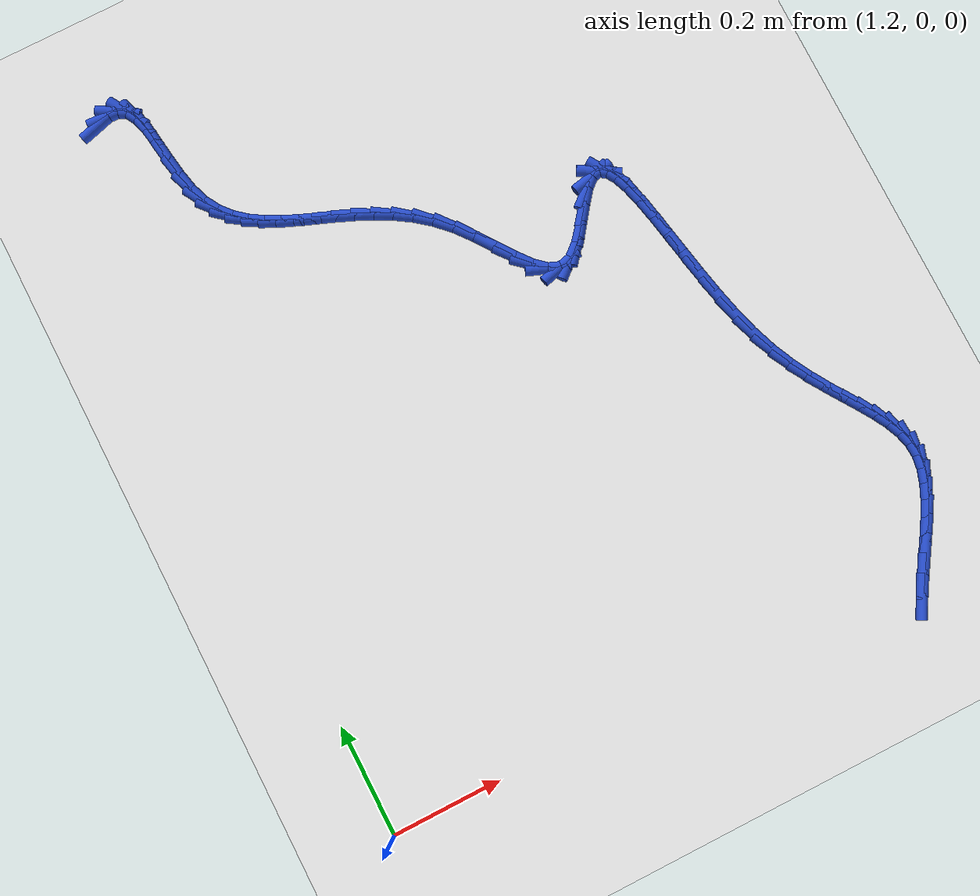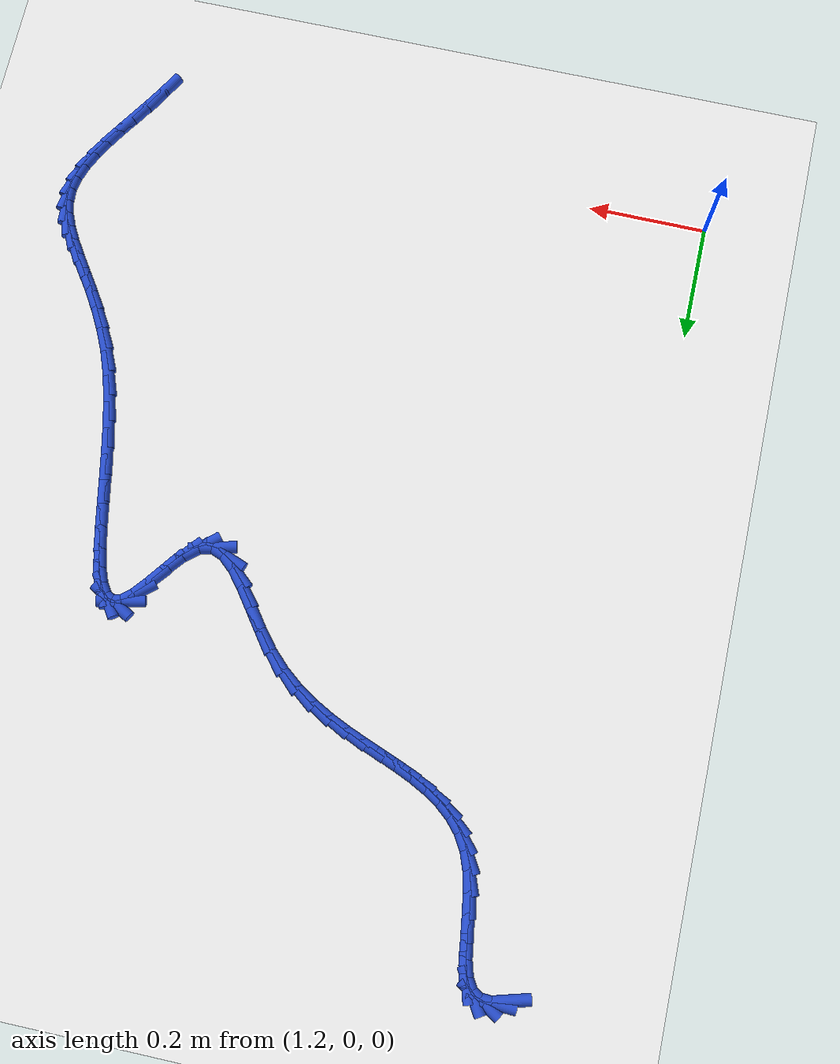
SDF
<sdf version="1.6">
 <world name="default">
  <model name="ground_plane">
   <static>1</static>
   <link name="link">
    <collision name="collision">
     <geometry><plane><normal>0 0 1</normal><size>100 100</size></plane></geometry>
     <surface><friction><ode><mu>100</mu><mu2>50</mu2></ode></friction></surface>
    </collision>
    <visual name="visual">
     <cast_shadows>0</cast_shadows>
     <geometry><plane><normal>0 0 1</normal><size>100 100</size></plane></geometry>
     <material>
      <script><uri>file://media/materials/scripts/gazebo.material</uri><name>Gazebo/WhiteGlow</name></script>
     </material>
    </visual>
   </link>
  </model>
  <model name="line">
   <link name="link_65">
    <pose>1.2853505555541223 1.3303477635416179 0.01 0 1.57 0.27853139766702234</pose>
    <collision name="collision">
     <geometry><cylinder><radius>0.01</radius><length>0.08</length></cylinder></geometry>
    </collision>
    <visual name="visual">
     <material>
      <script><name>Gazebo/Blue</name><uri>file://media/materials/scripts/gazebo.material</uri></script>
     </material>
     <geometry><cylinder><radius>0.01</radius><length>0.08</length></cylinder></geometry>
    </visual>
   </link>
   <link name="link_66">
    <pose>1.3061527996052291 1.3362964763967307 0.01 0 1.57 -0.05322189723997047</pose>
    <collision name="collision">
     <geometry><cylinder><radius>0.01</radius><length>0.08</length></cylinder></geometry>
    </collision>
    <visual name="visual">
     <material>
      <script><name>Gazebo/Blue</name><uri>file://media/materials/scripts/gazebo.material</uri></script>
     </material>
     <geometry><cylinder><radius>0.01</radius><length>0.08</length></cylinder></geometry>
    </visual>
   </link>
   <link name="link_67">
    <pose>1.3238896872884598 1.3353515932652669 0.01 0 1.57 -0.547477301090265</pose>
    <collision name="collision">
     <geometry><cylinder><radius>0.01</radius><length>0.08</length></cylinder></geometry>
    </collision>
    <visual name="visual">
     <material>
      <script><name>Gazebo/Blue</name><uri>file://media/materials/scripts/gazebo.material</uri></script>
     </material>
     <geometry><cylinder><radius>0.01</radius><length>0.08</length></cylinder></geometry>
    </visual>
   </link>
   <link name="link_68">
    <pose>1.3381774607695103 1.3266412009017596 0.01 0 1.57 -1.0251447185116218</pose>
    <collision name="collision">
     <geometry><cylinder><radius>0.01</radius><length>0.08</length></cylinder></geometry>
    </collision>
    <visual name="visual">
     <material>
      <script><name>Gazebo/Blue</name><uri>file://media/materials/scripts/gazebo.material</uri></script>
     </material>
     <geometry><cylinder><radius>0.01</radius><length>0.08</length></cylinder></geometry>
    </visual>
   </link>
   <link name="link_69">
    <pose>1.3486690461316018 1.3093608084153763 0.01 0 1.57 -1.2921160792339452</pose>
    <collision name="collision">
     <geometry><cylinder><radius>0.01</radius><length>0.08</length></cylinder></geometry>
    </collision>
    <visual name="visual">
     <material>
      <script><name>Gazebo/Blue</name><uri>file://media/materials/scripts/gazebo.material</uri></script>
     </material>
     <geometry><cylinder><radius>0.01</radius><length>0.08</length></cylinder></geometry>
    </visual>
   </link>
   <link name="link_70">
    <pose>1.355855136973155 1.2842456802718472 0.01 0 1.57 -1.4027228436416574</pose>
    <collision name="collision">
     <geometry><cylinder><radius>0.01</radius><length>0.08</length></cylinder></geometry>
    </collision>
    <visual name="visual">
     <material>
      <script><name>Gazebo/Blue</name><uri>file://media/materials/scripts/gazebo.material</uri></script>
     </material>
     <geometry><cylinder><radius>0.01</radius><length>0.08</length></cylinder></geometry>
    </visual>
   </link>
   <link name="link_71">
    <pose>1.361060895187166 1.2535647725675039 0.01 0 1.57 -1.4363598154307848</pose>
    <collision name="collision">
     <geometry><cylinder><radius>0.01</radius><length>0.08</length></cylinder></geometry>
    </collision>
    <visual name="visual">
     <material>
      <script><name>Gazebo/Blue</name><uri>file://media/materials/scripts/gazebo.material</uri></script>
     </material>
     <geometry><cylinder><radius>0.01</radius><length>0.08</length></cylinder></geometry>
    </visual>
   </link>
   <link name="link_72">
    <pose>1.3656475067368106 1.2196532510022042 0.01 0 1.57 -1.4188842971220965</pose>
    <collision name="collision">
     <geometry><cylinder><radius>0.01</radius><length>0.08</length></cylinder></geometry>
    </collision>
    <visual name="visual">
     <material>
      <script><name>Gazebo/Blue</name><uri>file://media/materials/scripts/gazebo.material</uri></script>
     </material>
     <geometry><cylinder><radius>0.01</radius><length>0.08</length></cylinder></geometry>
    </visual>
   </link>
   <link name="link_73">
    <pose>1.370976157585267 1.1848462812758067 0.01 0 1.57 -1.3516438923917342</pose>
    <collision name="collision">
     <geometry><cylinder><radius>0.01</radius><length>0.08</length></cylinder></geometry>
    </collision>
    <visual name="visual">
     <material>
      <script><name>Gazebo/Blue</name><uri>file://media/materials/scripts/gazebo.material</uri></script>
     </material>
     <geometry><cylinder><radius>0.01</radius><length>0.08</length></cylinder></geometry>
    </visual>
   </link>
   <link name="link_74">
    <pose>1.378408033695712 1.1514790290881702 0.01 0 1.57 -1.2197613411176336</pose>
    <collision name="collision">
     <geometry><cylinder><radius>0.01</radius><length>0.08</length></cylinder></geometry>
    </collision>
    <visual name="visual">
     <material>
      <script><name>Gazebo/Blue</name><uri>file://media/materials/scripts/gazebo.material</uri></script>
     </material>
     <geometry><cylinder><radius>0.01</radius><length>0.08</length></cylinder></geometry>
    </visual>
   </link>
   <link name="link_75">
    <pose>1.3892674923155086 1.12182473006647 0.01 0 1.57 -1.0394744714232016</pose>
    <collision name="collision">
     <geometry><cylinder><radius>0.01</radius><length>0.08</length></cylinder></geometry>
    </collision>
    <visual name="visual">
     <material>
      <script><name>Gazebo/Blue</name><uri>file://media/materials/scripts/gazebo.material</uri></script>
     </material>
     <geometry><cylinder><radius>0.01</radius><length>0.08</length></cylinder></geometry>
    </visual>
   </link>
   <link name="link_76">
    <pose>1.4040229660546213 1.0967173224355287 0.01 0 1.57 -0.8591904363915909</pose>
    <collision name="collision">
     <geometry><cylinder><radius>0.01</radius><length>0.08</length></cylinder></geometry>
    </collision>
    <visual name="visual">
     <material>
      <script><name>Gazebo/Blue</name><uri>file://media/materials/scripts/gazebo.material</uri></script>
     </material>
     <geometry><cylinder><radius>0.01</radius><length>0.08</length></cylinder></geometry>
    </visual>
   </link>
   <link name="link_77">
    <pose>1.4222820091883694 1.0755431170279126 0.01 0 1.57 -0.6986355467073119</pose>
    <collision name="collision">
     <geometry><cylinder><radius>0.01</radius><length>0.08</length></cylinder></geometry>
    </collision>
    <visual name="visual">
     <material>
      <script><name>Gazebo/Blue</name><uri>file://media/materials/scripts/gazebo.material</uri></script>
     </material>
     <geometry><cylinder><radius>0.01</radius><length>0.08</length></cylinder></geometry>
    </visual>
   </link>
   <link name="link_78">
    <pose>1.443614356526461 1.0576248285881331 0.01 0 1.57 -0.5691773472983183</pose>
    <collision name="collision">
     <geometry><cylinder><radius>0.01</radius><length>0.08</length></cylinder></geometry>
    </collision>
    <visual name="visual">
     <material>
      <script><name>Gazebo/Blue</name><uri>file://media/materials/scripts/gazebo.material</uri></script>
     </material>
     <geometry><cylinder><radius>0.01</radius><length>0.08</length></cylinder></geometry>
    </visual>
   </link>
   <link name="link_79">
    <pose>1.4675897428786069 1.0422851718607025 0.01 0 1.57 -0.4741078250498231</pose>
    <collision name="collision">
     <geometry><cylinder><radius>0.01</radius><length>0.08</length></cylinder></geometry>
    </collision>
    <visual name="visual">
     <material>
      <script><name>Gazebo/Blue</name><uri>file://media/materials/scripts/gazebo.material</uri></script>
     </material>
     <geometry><cylinder><radius>0.01</radius><length>0.08</length></cylinder></geometry>
    </visual>
   </link>
   <link name="link_80">
    <pose>1.493777903054515 1.0288468615901316 0.01 0 1.57 -0.41172249496234575</pose>
    <collision name="collision">
     <geometry><cylinder><radius>0.01</radius><length>0.08</length></cylinder></geometry>
    </collision>
    <visual name="visual">
     <material>
      <script><name>Gazebo/Blue</name><uri>file://media/materials/scripts/gazebo.material</uri></script>
     </material>
     <geometry><cylinder><radius>0.01</radius><length>0.08</length></cylinder></geometry>
    </visual>
   </link>
   <link name="link_81">
    <pose>1.5217485718638966 1.0166326125209317 0.01 0 1.57 -0.37869137597260677</pose>
    <collision name="collision">
     <geometry><cylinder><radius>0.01</radius><length>0.08</length></cylinder></geometry>
    </collision>
    <visual name="visual">
     <material>
      <script><name>Gazebo/Blue</name><uri>file://media/materials/scripts/gazebo.material</uri></script>
     </material>
     <geometry><cylinder><radius>0.01</radius><length>0.08</length></cylinder></geometry>
    </visual>
   </link>
   <link name="link_82">
    <pose>1.55107148411646 1.004965139397615 0.01 0 1.57 -0.371927104337818</pose>
    <collision name="collision">
     <geometry><cylinder><radius>0.01</radius><length>0.08</length></cylinder></geometry>
    </collision>
    <visual name="visual">
     <material>
      <script><name>Gazebo/Blue</name><uri>file://media/materials/scripts/gazebo.material</uri></script>
     </material>
     <geometry><cylinder><radius>0.01</radius><length>0.08</length></cylinder></geometry>
    </visual>
   </link>
   <link name="link_83">
    <pose>1.5813163746219152 0.9931671569646926 0.01 0 1.57 -0.38920221749239947</pose>
    <collision name="collision">
     <geometry><cylinder><radius>0.01</radius><length>0.08</length></cylinder></geometry>
    </collision>
    <visual name="visual">
     <material>
      <script><name>Gazebo/Blue</name><uri>file://media/materials/scripts/gazebo.material</uri></script>
     </material>
     <geometry><cylinder><radius>0.01</radius><length>0.08</length></cylinder></geometry>
    </visual>
   </link>
   <link name="link_84">
    <pose>1.6120529781899713 0.9805613799666761 0.01 0 1.57 -0.42909348713805645</pose>
    <collision name="collision">
     <geometry><cylinder><radius>0.01</radius><length>0.08</length></cylinder></geometry>
    </collision>
    <visual name="visual">
     <material>
      <script><name>Gazebo/Blue</name><uri>file://media/materials/scripts/gazebo.material</uri></script>
     </material>
     <geometry><cylinder><radius>0.01</radius><length>0.08</length></cylinder></geometry>
    </visual>
   </link>
   <link name="link_85">
    <pose>1.6428510296303385 0.9664705231480775 0.01 0 1.57 -0.490578771416051</pose>
    <collision name="collision">
     <geometry><cylinder><radius>0.01</radius><length>0.08</length></cylinder></geometry>
    </collision>
    <visual name="visual">
     <material>
      <script><name>Gazebo/Blue</name><uri>file://media/materials/scripts/gazebo.material</uri></script>
     </material>
     <geometry><cylinder><radius>0.01</radius><length>0.08</length></cylinder></geometry>
    </visual>
   </link>
   <link name="link_86">
    <pose>1.6732802637527262 0.9502173012534078 0.01 0 1.57 -0.5724093929902478</pose>
    <collision name="collision">
     <geometry><cylinder><radius>0.01</radius><length>0.08</length></cylinder></geometry>
    </collision>
    <visual name="visual">
     <material>
      <script><name>Gazebo/Blue</name><uri>file://media/materials/scripts/gazebo.material</uri></script>
     </material>
     <geometry><cylinder><radius>0.01</radius><length>0.08</length></cylinder></geometry>
    </visual>
   </link>
   <link name="link_87">
    <pose>1.7029104153668435 0.9311244290271787 0.01 0 1.57 -0.6723568095638092</pose>
    <collision name="collision">
     <geometry><cylinder><radius>0.01</radius><length>0.08</length></cylinder></geometry>
    </collision>
    <visual name="visual">
     <material>
      <script><name>Gazebo/Blue</name><uri>file://media/materials/scripts/gazebo.material</uri></script>
     </material>
     <geometry><cylinder><radius>0.01</radius><length>0.08</length></cylinder></geometry>
    </visual>
   </link>
   <link name="link_88">
    <pose>1.7313112192823998 0.9085146212139016 0.01 0 1.57 -0.786566550502243</pose>
    <collision name="collision">
     <geometry><cylinder><radius>0.01</radius><length>0.08</length></cylinder></geometry>
    </collision>
    <visual name="visual">
     <material>
      <script><name>Gazebo/Blue</name><uri>file://media/materials/scripts/gazebo.material</uri></script>
     </material>
     <geometry><cylinder><radius>0.01</radius><length>0.08</length></cylinder></geometry>
    </visual>
   </link>
   <link name="link_89">
    <pose>1.7580524620273805 0.8817108170981751 0.01 0 1.57 -0.8941212267509185</pose>
    <collision name="collision">
     <geometry><cylinder><radius>0.01</radius><length>0.08</length></cylinder></geometry>
    </collision>
    <visual name="visual">
     <material>
      <script><name>Gazebo/Blue</name><uri>file://media/materials/scripts/gazebo.material</uri></script>
     </material>
     <geometry><cylinder><radius>0.01</radius><length>0.08</length></cylinder></geometry>
    </visual>
   </link>
   <link name="link_90">
    <pose>1.7828797796945806 0.8507994245075241 0.01 0 1.57 -0.9497405381775882</pose>
    <collision name="collision">
     <geometry><cylinder><radius>0.01</radius><length>0.08</length></cylinder></geometry>
    </collision>
    <visual name="visual">
     <material>
      <script><name>Gazebo/Blue</name><uri>file://media/materials/scripts/gazebo.material</uri></script>
     </material>
     <geometry><cylinder><radius>0.01</radius><length>0.08</length></cylinder></geometry>
    </visual>
   </link>
   <link name="link_91">
    <pose>1.8061075186615987 0.8183359640759598 0.01 0 1.57 -0.9517945615307997</pose>
    <collision name="collision">
     <geometry><cylinder><radius>0.01</radius><length>0.08</length></cylinder></geometry>
    </collision>
    <visual name="visual">
     <material>
      <script><name>Gazebo/Blue</name><uri>file://media/materials/scripts/gazebo.material</uri></script>
     </material>
     <geometry><cylinder><radius>0.01</radius><length>0.08</length></cylinder></geometry>
    </visual>
   </link>
   <link name="link_92">
    <pose>1.8281647829750431 0.7873741883804739 0.01 0 1.57 -0.8916645440093958</pose>
    <collision name="collision">
     <geometry><cylinder><radius>0.01</radius><length>0.08</length></cylinder></geometry>
    </collision>
    <visual name="visual">
     <material>
      <script><name>Gazebo/Blue</name><uri>file://media/materials/scripts/gazebo.material</uri></script>
     </material>
     <geometry><cylinder><radius>0.01</radius><length>0.08</length></cylinder></geometry>
    </visual>
   </link>
   <link name="link_93">
    <pose>1.849480676681521 0.7609678499980601 0.01 0 1.57 -0.7300167712555314</pose>
    <collision name="collision">
     <geometry><cylinder><radius>0.01</radius><length>0.08</length></cylinder></geometry>
    </collision>
    <visual name="visual">
     <material>
      <script><name>Gazebo/Blue</name><uri>file://media/materials/scripts/gazebo.material</uri></script>
     </material>
     <geometry><cylinder><radius>0.01</radius><length>0.08</length></cylinder></geometry>
    </visual>
   </link>
   <link name="link_94">
    <pose>1.8704843038276409 0.7421707015057116 0.01 0 1.57 -0.3676254150903607</pose>
    <collision name="collision">
     <geometry><cylinder><radius>0.01</radius><length>0.08</length></cylinder></geometry>
    </collision>
    <visual name="visual">
     <material>
      <script><name>Gazebo/Blue</name><uri>file://media/materials/scripts/gazebo.material</uri></script>
     </material>
     <geometry><cylinder><radius>0.01</radius><length>0.08</length></cylinder></geometry>
    </visual>
   </link>
   <link name="link_95">
    <pose>1.8916047684600095 0.7340364954804214 0.01 0 1.57 0.2499377929977043</pose>
    <collision name="collision">
     <geometry><cylinder><radius>0.01</radius><length>0.08</length></cylinder></geometry>
    </collision>
    <visual name="visual">
     <material>
      <script><name>Gazebo/Blue</name><uri>file://media/materials/scripts/gazebo.material</uri></script>
     </material>
     <geometry><cylinder><radius>0.01</radius><length>0.08</length></cylinder></geometry>
    </visual>
   </link>
   <link name="link_96">
    <pose>1.9132641367451693 0.7395656050017312 0.01 0 1.57 0.7048059287508533</pose>
    <collision name="collision">
     <geometry><cylinder><radius>0.01</radius><length>0.08</length></cylinder></geometry>
    </collision>
    <visual name="visual">
     <material>
      <script><name>Gazebo/Blue</name><uri>file://media/materials/scripts/gazebo.material</uri></script>
     </material>
     <geometry><cylinder><radius>0.01</radius><length>0.08</length></cylinder></geometry>
    </visual>
   </link>
   <link name="link_97">
    <pose>1.9354459050268051 0.758432026950073 0.01 0 1.57 0.8807169830798313</pose>
    <collision name="collision">
     <geometry><cylinder><radius>0.01</radius><length>0.08</length></cylinder></geometry>
    </collision>
    <visual name="visual">
     <material>
      <script><name>Gazebo/Blue</name><uri>file://media/materials/scripts/gazebo.material</uri></script>
     </material>
     <geometry><cylinder><radius>0.01</radius><length>0.08</length></cylinder></geometry>
    </visual>
   </link>
   <link name="link_98">
    <pose>1.957444246269218 0.7850815168560132 0.01 0 1.57 0.9333201489348509</pose>
    <collision name="collision">
     <geometry><cylinder><radius>0.01</radius><length>0.08</length></cylinder></geometry>
    </collision>
    <visual name="visual">
     <material>
      <script><name>Gazebo/Blue</name><uri>file://media/materials/scripts/gazebo.material</uri></script>
     </material>
     <geometry><cylinder><radius>0.01</radius><length>0.08</length></cylinder></geometry>
    </visual>
   </link>
   <link name="link_99">
    <pose>1.9784929075871915 0.8135015244179072 0.01 0 1.57 0.8962988359399262</pose>
    <collision name="collision">
     <geometry><cylinder><radius>0.01</radius><length>0.08</length></cylinder></geometry>
    </collision>
    <visual name="visual">
     <material>
      <script><name>Gazebo/Blue</name><uri>file://media/materials/scripts/gazebo.material</uri></script>
     </material>
     <geometry><cylinder><radius>0.01</radius><length>0.08</length></cylinder></geometry>
    </visual>
   </link>
   <link name="link_100">
    <pose>1.9978256360955098 0.8376794993341108 0.01 0 1.57 0.701827487415335</pose>
    <collision name="collision">
     <geometry><cylinder><radius>0.01</radius><length>0.08</length></cylinder></geometry>
    </collision>
    <visual name="visual">
     <material>
      <script><name>Gazebo/Blue</name><uri>file://media/materials/scripts/gazebo.material</uri></script>
     </material>
     <geometry><cylinder><radius>0.01</radius><length>0.08</length></cylinder></geometry>
    </visual>
   </link>
   <link name="link_101">
    <pose>2.0147355533168327 0.8519754341678849 0.01 0 1.57 0.20144617636448983</pose>
    <collision name="collision">
     <geometry><cylinder><radius>0.01</radius><length>0.08</length></cylinder></geometry>
    </collision>
    <visual name="visual">
     <material>
      <script><name>Gazebo/Blue</name><uri>file://media/materials/scripts/gazebo.material</uri></script>
     </material>
     <geometry><cylinder><radius>0.01</radius><length>0.08</length></cylinder></geometry>
    </visual>
   </link>
   <link name="link_102">
    <pose>2.0291813637331413 0.8549255009403215 0.01 0 1.57 -0.5297576721503066</pose>
    <collision name="collision">
     <geometry><cylinder><radius>0.01</radius><length>0.08</length></cylinder></geometry>
    </collision>
    <visual name="visual">
     <material>
      <script><name>Gazebo/Blue</name><uri>file://media/materials/scripts/gazebo.material</uri></script>
     </material>
     <geometry><cylinder><radius>0.01</radius><length>0.08</length></cylinder></geometry>
    </visual>
   </link>
   <link name="link_103">
    <pose>2.041539760472997 0.8476885283601705 0.01 0 1.57 -0.9897485638841087</pose>
    <collision name="collision">
     <geometry><cylinder><radius>0.01</radius><length>0.08</length></cylinder></geometry>
    </collision>
    <visual name="visual">
     <material>
      <script><name>Gazebo/Blue</name><uri>file://media/materials/scripts/gazebo.material</uri></script>
     </material>
     <geometry><cylinder><radius>0.01</radius><length>0.08</length></cylinder></geometry>
    </visual>
   </link>
   <link name="link_104">
    <pose>2.052193907595626 0.8314639467882351 0.01 0 1.57 -1.2000943881005026</pose>
    <collision name="collision">
     <geometry><cylinder><radius>0.01</radius><length>0.08</length></cylinder></geometry>
    </collision>
    <visual name="visual">
     <material>
      <script><name>Gazebo/Blue</name><uri>file://media/materials/scripts/gazebo.material</uri></script>
     </material>
     <geometry><cylinder><radius>0.01</radius><length>0.08</length></cylinder></geometry>
    </visual>
   </link>
   <link name="link_105">
    <pose>2.061526969160259 0.8074511865853191 0.01 0 1.57 -1.303046179569208</pose>
    <collision name="collision">
     <geometry><cylinder><radius>0.01</radius><length>0.08</length></cylinder></geometry>
    </collision>
    <visual name="visual">
     <material>
      <script><name>Gazebo/Blue</name><uri>file://media/materials/scripts/gazebo.material</uri></script>
     </material>
     <geometry><cylinder><radius>0.01</radius><length>0.08</length></cylinder></geometry>
    </visual>
   </link>
   <link name="link_106">
    <pose>2.069922109226121 0.7768496781122257 0.01 0 1.57 -1.3563034951414612</pose>
    <collision name="collision">
     <geometry><cylinder><radius>0.01</radius><length>0.08</length></cylinder></geometry>
    </collision>
    <visual name="visual">
     <material>
      <script><name>Gazebo/Blue</name><uri>file://media/materials/scripts/gazebo.material</uri></script>
     </material>
     <geometry><cylinder><radius>0.01</radius><length>0.08</length></cylinder></geometry>
    </visual>
   </link>
   <link name="link_107">
    <pose>2.0777624918524435 0.740858851729759 0.01 0 1.57 -1.3822069205072367</pose>
    <collision name="collision">
     <geometry><cylinder><radius>0.01</radius><length>0.08</length></cylinder></geometry>
    </collision>
    <visual name="visual">
     <material>
      <script><name>Gazebo/Blue</name><uri>file://media/materials/scripts/gazebo.material</uri></script>
     </material>
     <geometry><cylinder><radius>0.01</radius><length>0.08</length></cylinder></geometry>
    </visual>
   </link>
   <link name="link_108">
    <pose>2.0854312810984523 0.700678137798722 0.01 0 1.57 -1.3902465642164477</pose>
    <collision name="collision">
     <geometry><cylinder><radius>0.01</radius><length>0.08</length></cylinder></geometry>
    </collision>
    <visual name="visual">
     <material>
      <script><name>Gazebo/Blue</name><uri>file://media/materials/scripts/gazebo.material</uri></script>
     </material>
     <geometry><cylinder><radius>0.01</radius><length>0.08</length></cylinder></geometry>
    </visual>
   </link>
   <link name="link_109">
    <pose>2.0933116410233765 0.6575069666799187 0.01 0 1.57 -1.3844885205665518</pose>
    <collision name="collision">
     <geometry><cylinder><radius>0.01</radius><length>0.08</length></cylinder></geometry>
    </collision>
    <visual name="visual">
     <material>
      <script><name>Gazebo/Blue</name><uri>file://media/materials/scripts/gazebo.material</uri></script>
     </material>
     <geometry><cylinder><radius>0.01</radius><length>0.08</length></cylinder></geometry>
    </visual>
   </link>
   <link name="link_110">
    <pose>2.1017867356864435 0.6125447687341523 0.01 0 1.57 -1.3661875090650026</pose>
    <collision name="collision">
     <geometry><cylinder><radius>0.01</radius><length>0.08</length></cylinder></geometry>
    </collision>
    <visual name="visual">
     <material>
      <script><name>Gazebo/Blue</name><uri>file://media/materials/scripts/gazebo.material</uri></script>
     </material>
     <geometry><cylinder><radius>0.01</radius><length>0.08</length></cylinder></geometry>
    </visual>
   </link>
   <link name="link_111">
    <pose>2.111239729146882 0.5669909743222263 0.01 0 1.57 -1.334682876750881</pose>
    <collision name="collision">
     <geometry><cylinder><radius>0.01</radius><length>0.08</length></cylinder></geometry>
    </collision>
    <visual name="visual">
     <material>
      <script><name>Gazebo/Blue</name><uri>file://media/materials/scripts/gazebo.material</uri></script>
     </material>
     <geometry><cylinder><radius>0.01</radius><length>0.08</length></cylinder></geometry>
    </visual>
   </link>
   <link name="link_112">
    <pose>2.1220537854639203 0.5220450138049448 0.01 0 1.57 -1.287511528044646</pose>
    <collision name="collision">
     <geometry><cylinder><radius>0.01</radius><length>0.08</length></cylinder></geometry>
    </collision>
    <visual name="visual">
     <material>
      <script><name>Gazebo/Blue</name><uri>file://media/materials/scripts/gazebo.material</uri></script>
     </material>
     <geometry><cylinder><radius>0.01</radius><length>0.08</length></cylinder></geometry>
    </visual>
   </link>
   <link name="link_113">
    <pose>2.1346120686967858 0.4789063175431115 0.01 0 1.57 -1.2202245410643164</pose>
    <collision name="collision">
     <geometry><cylinder><radius>0.01</radius><length>0.08</length></cylinder></geometry>
    </collision>
    <visual name="visual">
     <material>
      <script><name>Gazebo/Blue</name><uri>file://media/materials/scripts/gazebo.material</uri></script>
     </material>
     <geometry><cylinder><radius>0.01</radius><length>0.08</length></cylinder></geometry>
    </visual>
   </link>
   <link name="link_114">
    <pose>2.1492909566534375 0.43876459724158867 0.01 0 1.57 -1.1411070676083628</pose>
    <collision name="collision">
     <geometry><cylinder><radius>0.01</radius><length>0.08</length></cylinder></geometry>
    </collision>
    <visual name="visual">
     <material>
      <script><name>Gazebo/Blue</name><uri>file://media/materials/scripts/gazebo.material</uri></script>
     </material>
     <geometry><cylinder><radius>0.01</radius><length>0.08</length></cylinder></geometry>
    </visual>
   </link>
   <link name="link_115">
    <pose>2.166044394296391 0.40220459445017914 0.01 0 1.57 -1.0730555514200637</pose>
    <collision name="collision">
     <geometry><cylinder><radius>0.01</radius><length>0.08</length></cylinder></geometry>
    </collision>
    <visual name="visual">
     <material>
      <script><name>Gazebo/Blue</name><uri>file://media/materials/scripts/gazebo.material</uri></script>
     </material>
     <geometry><cylinder><radius>0.01</radius><length>0.08</length></cylinder></geometry>
    </visual>
   </link>
   <link name="link_116">
    <pose>2.1841626284322415 0.36886056218393215 0.01 0 1.57 -1.0215535118563965</pose>
    <collision name="collision">
     <geometry><cylinder><radius>0.01</radius><length>0.08</length></cylinder></geometry>
    </collision>
    <visual name="visual">
     <material>
      <script><name>Gazebo/Blue</name><uri>file://media/materials/scripts/gazebo.material</uri></script>
     </material>
     <geometry><cylinder><radius>0.01</radius><length>0.08</length></cylinder></geometry>
    </visual>
   </link>
   <link name="link_117">
    <pose>2.2028777572627174 0.33828347827964367 0.01 0 1.57 -0.9900634841623155</pose>
    <collision name="collision">
     <geometry><cylinder><radius>0.01</radius><length>0.08</length></cylinder></geometry>
    </collision>
    <visual name="visual">
     <material>
      <script><name>Gazebo/Blue</name><uri>file://media/materials/scripts/gazebo.material</uri></script>
     </material>
     <geometry><cylinder><radius>0.01</radius><length>0.08</length></cylinder></geometry>
    </visual>
   </link>
   <link name="link_118">
    <pose>2.2214218789895486 0.3100243205741099 0.01 0 1.57 -0.9824865824080564</pose>
    <collision name="collision">
     <geometry><cylinder><radius>0.01</radius><length>0.08</length></cylinder></geometry>
    </collision>
    <visual name="visual">
     <material>
      <script><name>Gazebo/Blue</name><uri>file://media/materials/scripts/gazebo.material</uri></script>
     </material>
     <geometry><cylinder><radius>0.01</radius><length>0.08</length></cylinder></geometry>
    </visual>
   </link>
   <link name="link_119">
    <pose>2.2390270918144615 0.28363406690412674 0.01 0 1.57 -1.0038343905676024</pose>
    <collision name="collision">
     <geometry><cylinder><radius>0.01</radius><length>0.08</length></cylinder></geometry>
    </collision>
    <visual name="visual">
     <material>
      <script><name>Gazebo/Blue</name><uri>file://media/materials/scripts/gazebo.material</uri></script>
     </material>
     <geometry><cylinder><radius>0.01</radius><length>0.08</length></cylinder></geometry>
    </visual>
   </link>
   <link name="link_120">
    <pose>2.2549254939391847 0.25866369510649034 0.01 0 1.57 -1.0608168494614083</pose>
    <collision name="collision">
     <geometry><cylinder><radius>0.01</radius><length>0.08</length></cylinder></geometry>
    </collision>
    <visual name="visual">
     <material>
      <script><name>Gazebo/Blue</name><uri>file://media/materials/scripts/gazebo.material</uri></script>
     </material>
     <geometry><cylinder><radius>0.01</radius><length>0.08</length></cylinder></geometry>
    </visual>
   </link>
   <link name="link_121">
    <pose>2.268349183565447 0.23466418301799669 0.01 0 1.57 -1.1616225781298466</pose>
    <collision name="collision">
     <geometry><cylinder><radius>0.01</radius><length>0.08</length></cylinder></geometry>
    </collision>
    <visual name="visual">
     <material>
      <script><name>Gazebo/Blue</name><uri>file://media/materials/scripts/gazebo.material</uri></script>
     </material>
     <geometry><cylinder><radius>0.01</radius><length>0.08</length></cylinder></geometry>
    </visual>
   </link>
   <link name="link_122">
    <pose>2.278530258894976 0.21118650847544185 0.01 0 1.57 -1.3130177030617527</pose>
    <collision name="collision">
     <geometry><cylinder><radius>0.01</radius><length>0.08</length></cylinder></geometry>
    </collision>
    <visual name="visual">
     <material>
      <script><name>Gazebo/Blue</name><uri>file://media/materials/scripts/gazebo.material</uri></script>
     </material>
     <geometry><cylinder><radius>0.01</radius><length>0.08</length></cylinder></geometry>
    </visual>
   </link>
   <link name="link_123">
    <pose>2.2847008181295 0.1877816493156222 0.01 0 1.57 -1.5122747690267668</pose>
    <collision name="collision">
     <geometry><cylinder><radius>0.01</radius><length>0.08</length></cylinder></geometry>
    </collision>
    <visual name="visual">
     <material>
      <script><name>Gazebo/Blue</name><uri>file://media/materials/scripts/gazebo.material</uri></script>
     </material>
     <geometry><cylinder><radius>0.01</radius><length>0.08</length></cylinder></geometry>
    </visual>
   </link>
   <link name="link_124">
    <pose>2.2860940945477455 0.1640009169434962 0.01 0 1.57 1.419108912124263</pose>
    <collision name="collision">
     <geometry><cylinder><radius>0.01</radius><length>0.08</length></cylinder></geometry>
    </collision>
    <visual name="visual">
     <material>
      <script><name>Gazebo/Blue</name><uri>file://media/materials/scripts/gazebo.material</uri></script>
     </material>
     <geometry><cylinder><radius>0.01</radius><length>0.08</length></cylinder></geometry>
    </visual>
   </link>
   <link name="link_125">
    <pose>2.2823512126941146 0.1395154908791411 0.01 0 1.57 1.2554769580968115</pose>
    <collision name="collision">
     <geometry><cylinder><radius>0.01</radius><length>0.08</length></cylinder></geometry>
    </collision>
    <visual name="visual">
     <material>
      <script><name>Gazebo/Blue</name><uri>file://media/materials/scripts/gazebo.material</uri></script>
     </material>
     <geometry><cylinder><radius>0.01</radius><length>0.08</length></cylinder></geometry>
    </visual>
   </link>
   <link name="link_126">
    <pose>2.274123725784135 0.11429348806311924 0.01 0 1.57 1.1405502571210289</pose>
    <collision name="collision">
     <geometry><cylinder><radius>0.01</radius><length>0.08</length></cylinder></geometry>
    </collision>
    <visual name="visual">
     <material>
      <script><name>Gazebo/Blue</name><uri>file://media/materials/scripts/gazebo.material</uri></script>
     </material>
     <geometry><cylinder><radius>0.01</radius><length>0.08</length></cylinder></geometry>
    </visual>
   </link>
   <link name="link_127">
    <pose>2.2622169485489714 0.08834821175060263 0.01 0 1.57 1.0644927761071783</pose>
    <collision name="collision">
     <geometry><cylinder><radius>0.01</radius><length>0.08</length></cylinder></geometry>
    </collision>
    <visual name="visual">
     <material>
      <script><name>Gazebo/Blue</name><uri>file://media/materials/scripts/gazebo.material</uri></script>
     </material>
     <geometry><cylinder><radius>0.01</radius><length>0.08</length></cylinder></geometry>
    </visual>
   </link>
   <link name="link_128">
    <pose>2.247436195719794 0.06169296519676345 0.01 0 1.57 1.0186782866277033</pose>
    <collision name="collision">
     <geometry><cylinder><radius>0.01</radius><length>0.08</length></cylinder></geometry>
    </collision>
    <visual name="visual">
     <material>
      <script><name>Gazebo/Blue</name><uri>file://media/materials/scripts/gazebo.material</uri></script>
     </material>
     <geometry><cylinder><radius>0.01</radius><length>0.08</length></cylinder></geometry>
    </visual>
   </link>
   <link name="link_129">
    <pose>2.2305867820277685 0.034341051656773765 0.01 0 1.57 0.9971886037037788</pose>
    <collision name="collision">
     <geometry><cylinder><radius>0.01</radius><length>0.08</length></cylinder></geometry>
    </collision>
    <visual name="visual">
     <material>
      <script><name>Gazebo/Blue</name><uri>file://media/materials/scripts/gazebo.material</uri></script>
     </material>
     <geometry><cylinder><radius>0.01</radius><length>0.08</length></cylinder></geometry>
    </visual>
   </link>
   <link name="link_130">
    <pose>2.2124740222040624 0.006305774385805627 0.01 0 1.57 0.9965713273898975</pose>
    <collision name="collision">
     <geometry><cylinder><radius>0.01</radius><length>0.08</length></cylinder></geometry>
    </collision>
    <visual name="visual">
     <material>
      <script><name>Gazebo/Blue</name><uri>file://media/materials/scripts/gazebo.material</uri></script>
     </material>
     <geometry><cylinder><radius>0.01</radius><length>0.08</length></cylinder></geometry>
    </visual>
   </link>
   <link name="link_131">
    <pose>2.1939032309798416 -0.022399563360968884 0.01 0 1.57 1.0153330957862463</pose>
    <collision name="collision">
     <geometry><cylinder><radius>0.01</radius><length>0.08</length></cylinder></geometry>
    </collision>
    <visual name="visual">
     <material>
      <script><name>Gazebo/Blue</name><uri>file://media/materials/scripts/gazebo.material</uri></script>
     </material>
     <geometry><cylinder><radius>0.01</radius><length>0.08</length></cylinder></geometry>
    </visual>
   </link>
   <link name="link_132">
    <pose>2.175679723086276 -0.05176165832837763 0.01 0 1.57 1.0535394824346531</pose>
    <collision name="collision">
     <geometry><cylinder><radius>0.01</radius><length>0.08</length></cylinder></geometry>
    </collision>
    <visual name="visual">
     <material>
      <script><name>Gazebo/Blue</name><uri>file://media/materials/scripts/gazebo.material</uri></script>
     </material>
     <geometry><cylinder><radius>0.01</radius><length>0.08</length></cylinder></geometry>
    </visual>
   </link>
  </model>
 </world>
</sdf>
